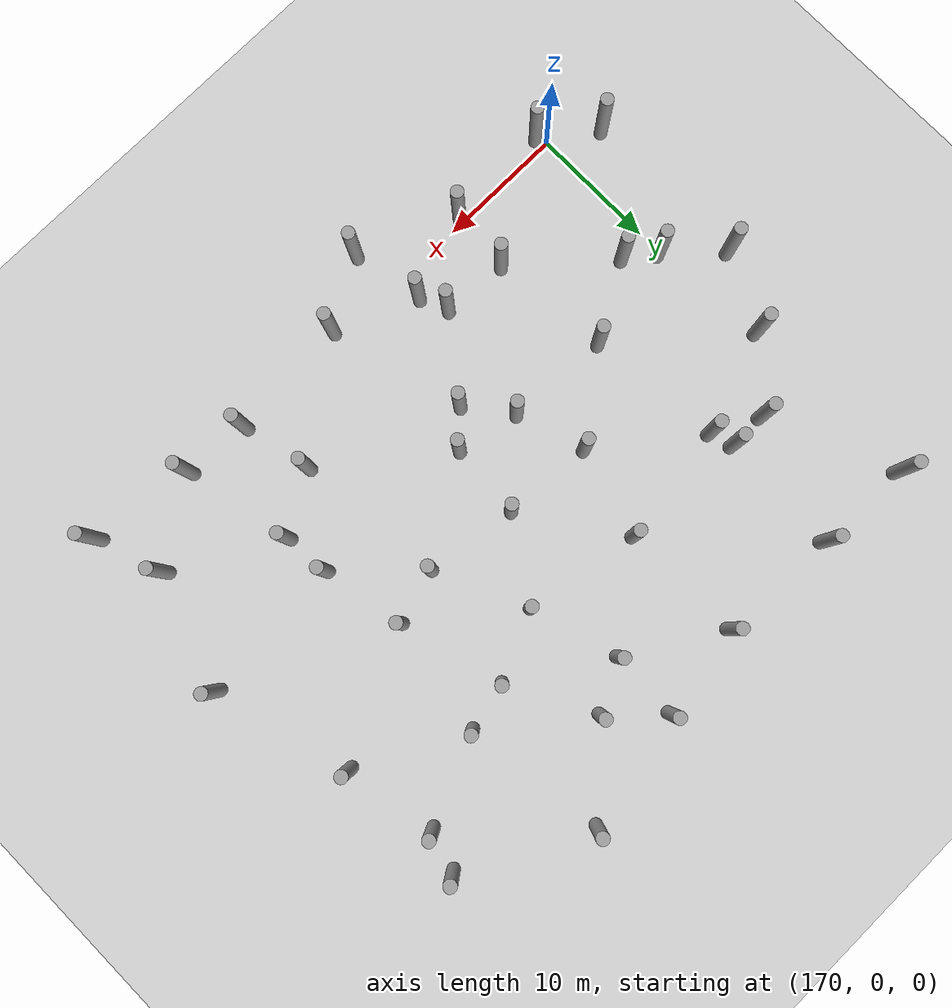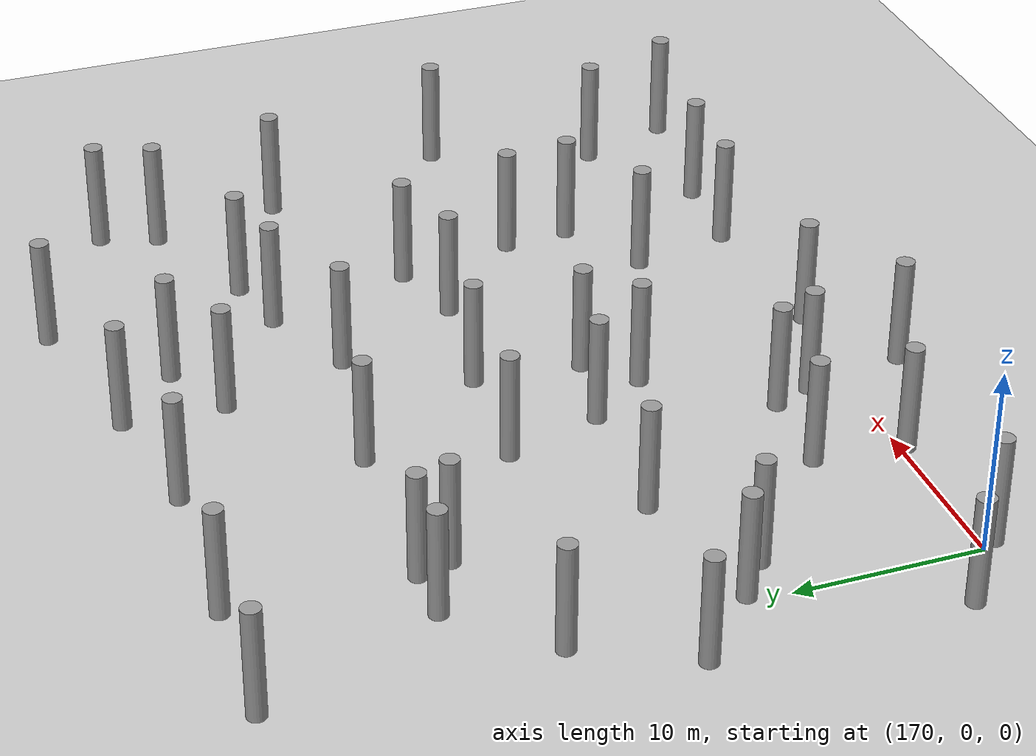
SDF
<sdf version="1.5">
 <world name="circle">
  <model name="ground">
   <static>1</static>
   <link name="link">
    <collision name="collision">
     <geometry><plane><normal>0 0 1</normal><size>100 100</size></plane></geometry>
     <surface><friction><ode><mu>100</mu><mu2>50</mu2></ode></friction></surface>
    </collision>
    <visual name="visual">
     <cast_shadows>0</cast_shadows>
     <geometry><plane><normal>0 0 1</normal><size>100 100</size></plane></geometry>
     <material>
      <script><uri>file://media/materials/scripts/gazebo.material</uri><name>Gazebo/Grey</name></script>
     </material>
    </visual>
    <velocity_decay><linear>0</linear><angular>0</angular></velocity_decay>
   </link>
  </model>
  <model name="unit_cylinder_270">
   <pose>166.5129695 2.3240239351 3 3e-06 4e-06 -0</pose>
   <static>1</static>
   <self_collide>1</self_collide>
   <link name="link">
    <inertial>
     <mass>1</mass>
     <inertia><ixx>0.145833</ixx><ixy>0</ixy><ixz>0</ixz><iyy>0.145833</iyy><iyz>0</iyz><izz>0.125</izz></inertia>
    </inertial>
    <collision name="collision">
     <geometry><cylinder><radius>0.5</radius><length>6</length></cylinder></geometry>
    </collision>
    <visual name="visual">
     <geometry><cylinder><radius>0.5</radius><length>6</length></cylinder></geometry>
     <material>
      <script><name>Gazebo/Grey</name><uri>file://media/materials/scripts/gazebo.material</uri></script>
     </material>
    </visual>
    <collision name="cyl_collision">
     <geometry><cylinder><radius>0.5</radius><length>6</length></cylinder></geometry>
    </collision>
    <sensor name="my_contact" type="contact">
     <contact><collision>cyl_collision</collision></contact>
     <update_rate>5</update_rate>
    </sensor>
   </link>
  </model>
  <model name="unit_cylinder_272">
   <pose>166.591891095 15.6642745235 3 3e-06 4e-06 -0</pose>
   <static>1</static>
   <self_collide>1</self_collide>
   <link name="link">
    <inertial>
     <mass>1</mass>
     <inertia><ixx>0.145833</ixx><ixy>0</ixy><ixz>0</ixz><iyy>0.145833</iyy><iyz>0</iyz><izz>0.125</izz></inertia>
    </inertial>
    <collision name="collision">
     <geometry><cylinder><radius>0.5</radius><length>6</length></cylinder></geometry>
    </collision>
    <visual name="visual">
     <geometry><cylinder><radius>0.5</radius><length>6</length></cylinder></geometry>
     <material>
      <script><name>Gazebo/Grey</name><uri>file://media/materials/scripts/gazebo.material</uri></script>
     </material>
    </visual>
    <collision name="cyl_collision">
     <geometry><cylinder><radius>0.5</radius><length>6</length></cylinder></geometry>
    </collision>
    <sensor name="my_contact" type="contact">
     <contact><collision>cyl_collision</collision></contact>
     <update_rate>5</update_rate>
    </sensor>
   </link>
  </model>
  <model name="unit_cylinder_282">
   <pose>170.498451374 -0.73250684499 3 3e-06 4e-06 -0</pose>
   <static>1</static>
   <self_collide>1</self_collide>
   <link name="link">
    <inertial>
     <mass>1</mass>
     <inertia><ixx>0.145833</ixx><ixy>0</ixy><ixz>0</ixz><iyy>0.145833</iyy><iyz>0</iyz><izz>0.125</izz></inertia>
    </inertial>
    <collision name="collision">
     <geometry><cylinder><radius>0.5</radius><length>6</length></cylinder></geometry>
    </collision>
    <visual name="visual">
     <geometry><cylinder><radius>0.5</radius><length>6</length></cylinder></geometry>
     <material>
      <script><name>Gazebo/Grey</name><uri>file://media/materials/scripts/gazebo.material</uri></script>
     </material>
    </visual>
    <collision name="cyl_collision">
     <geometry><cylinder><radius>0.5</radius><length>6</length></cylinder></geometry>
    </collision>
    <sensor name="my_contact" type="contact">
     <contact><collision>cyl_collision</collision></contact>
     <update_rate>5</update_rate>
    </sensor>
   </link>
  </model>
  <model name="unit_cylinder_283">
   <pose>172.629861783 10.4889333771 3 3e-06 4e-06 -0</pose>
   <static>1</static>
   <self_collide>1</self_collide>
   <link name="link">
    <inertial>
     <mass>1</mass>
     <inertia><ixx>0.145833</ixx><ixy>0</ixy><ixz>0</ixz><iyy>0.145833</iyy><iyz>0</iyz><izz>0.125</izz></inertia>
    </inertial>
    <collision name="collision">
     <geometry><cylinder><radius>0.5</radius><length>6</length></cylinder></geometry>
    </collision>
    <visual name="visual">
     <geometry><cylinder><radius>0.5</radius><length>6</length></cylinder></geometry>
     <material>
      <script><name>Gazebo/Grey</name><uri>file://media/materials/scripts/gazebo.material</uri></script>
     </material>
    </visual>
    <collision name="cyl_collision">
     <geometry><cylinder><radius>0.5</radius><length>6</length></cylinder></geometry>
    </collision>
    <sensor name="my_contact" type="contact">
     <contact><collision>cyl_collision</collision></contact>
     <update_rate>5</update_rate>
    </sensor>
   </link>
  </model>
  <model name="unit_cylinder_284">
   <pose>170.406014508 12.1480397608 3 3e-06 4e-06 -0</pose>
   <static>1</static>
   <self_collide>1</self_collide>
   <link name="link">
    <inertial>
     <mass>1</mass>
     <inertia><ixx>0.145833</ixx><ixy>0</ixy><ixz>0</ixz><iyy>0.145833</iyy><iyz>0</iyz><izz>0.125</izz></inertia>
    </inertial>
    <collision name="collision">
     <geometry><cylinder><radius>0.5</radius><length>6</length></cylinder></geometry>
    </collision>
    <visual name="visual">
     <geometry><cylinder><radius>0.5</radius><length>6</length></cylinder></geometry>
     <material>
      <script><name>Gazebo/Grey</name><uri>file://media/materials/scripts/gazebo.material</uri></script>
     </material>
    </visual>
    <collision name="cyl_collision">
     <geometry><cylinder><radius>0.5</radius><length>6</length></cylinder></geometry>
    </collision>
    <sensor name="my_contact" type="contact">
     <contact><collision>cyl_collision</collision></contact>
     <update_rate>5</update_rate>
    </sensor>
   </link>
  </model>
  <model name="unit_cylinder_285">
   <pose>169.570666954 21.4284582694 3 3e-06 4e-06 -0</pose>
   <static>1</static>
   <self_collide>1</self_collide>
   <link name="link">
    <inertial>
     <mass>1</mass>
     <inertia><ixx>0.145833</ixx><ixy>0</ixy><ixz>0</ixz><iyy>0.145833</iyy><iyz>0</iyz><izz>0.125</izz></inertia>
    </inertial>
    <collision name="collision">
     <geometry><cylinder><radius>0.5</radius><length>6</length></cylinder></geometry>
    </collision>
    <visual name="visual">
     <geometry><cylinder><radius>0.5</radius><length>6</length></cylinder></geometry>
     <material>
      <script><name>Gazebo/Grey</name><uri>file://media/materials/scripts/gazebo.material</uri></script>
     </material>
    </visual>
    <collision name="cyl_collision">
     <geometry><cylinder><radius>0.5</radius><length>6</length></cylinder></geometry>
    </collision>
    <sensor name="my_contact" type="contact">
     <contact><collision>cyl_collision</collision></contact>
     <update_rate>5</update_rate>
    </sensor>
   </link>
  </model>
  <model name="unit_cylinder_286">
   <pose>173.950558017 26.0451045765 3 3e-06 4e-06 -0</pose>
   <static>1</static>
   <self_collide>1</self_collide>
   <link name="link">
    <inertial>
     <mass>1</mass>
     <inertia><ixx>0.145833</ixx><ixy>0</ixy><ixz>0</ixz><iyy>0.145833</iyy><iyz>0</iyz><izz>0.125</izz></inertia>
    </inertial>
    <collision name="collision">
     <geometry><cylinder><radius>0.5</radius><length>6</length></cylinder></geometry>
    </collision>
    <visual name="visual">
     <geometry><cylinder><radius>0.5</radius><length>6</length></cylinder></geometry>
     <material>
      <script><name>Gazebo/Grey</name><uri>file://media/materials/scripts/gazebo.material</uri></script>
     </material>
    </visual>
    <collision name="cyl_collision">
     <geometry><cylinder><radius>0.5</radius><length>6</length></cylinder></geometry>
    </collision>
    <sensor name="my_contact" type="contact">
     <contact><collision>cyl_collision</collision></contact>
     <update_rate>5</update_rate>
    </sensor>
   </link>
  </model>
  <model name="unit_cylinder_287">
   <pose>169.797387657 35.834652189 3 3e-06 4e-06 -0</pose>
   <static>1</static>
   <self_collide>1</self_collide>
   <link name="link">
    <inertial>
     <mass>1</mass>
     <inertia><ixx>0.145833</ixx><ixy>0</ixy><ixz>0</ixz><iyy>0.145833</iyy><iyz>0</iyz><izz>0.125</izz></inertia>
    </inertial>
    <collision name="collision">
     <geometry><cylinder><radius>0.5</radius><length>6</length></cylinder></geometry>
    </collision>
    <visual name="visual">
     <geometry><cylinder><radius>0.5</radius><length>6</length></cylinder></geometry>
     <material>
      <script><name>Gazebo/Grey</name><uri>file://media/materials/scripts/gazebo.material</uri></script>
     </material>
    </visual>
    <collision name="cyl_collision">
     <geometry><cylinder><radius>0.5</radius><length>6</length></cylinder></geometry>
    </collision>
    <sensor name="my_contact" type="contact">
     <contact><collision>cyl_collision</collision></contact>
     <update_rate>5</update_rate>
    </sensor>
   </link>
  </model>
  <model name="unit_cylinder_294">
   <pose>178.955057749 -0.327991984011 3 3e-06 4e-06 -0</pose>
   <static>1</static>
   <self_collide>1</self_collide>
   <link name="link">
    <inertial>
     <mass>1</mass>
     <inertia><ixx>0.145833</ixx><ixy>0</ixy><ixz>0</ixz><iyy>0.145833</iyy><iyz>0</iyz><izz>0.125</izz></inertia>
    </inertial>
    <collision name="collision">
     <geometry><cylinder><radius>0.5</radius><length>6</length></cylinder></geometry>
    </collision>
    <visual name="visual">
     <geometry><cylinder><radius>0.5</radius><length>6</length></cylinder></geometry>
     <material>
      <script><name>Gazebo/Grey</name><uri>file://media/materials/scripts/gazebo.material</uri></script>
     </material>
    </visual>
    <collision name="cyl_collision">
     <geometry><cylinder><radius>0.5</radius><length>6</length></cylinder></geometry>
    </collision>
    <sensor name="my_contact" type="contact">
     <contact><collision>cyl_collision</collision></contact>
     <update_rate>5</update_rate>
    </sensor>
   </link>
  </model>
  <model name="unit_cylinder_295">
   <pose>179.417786814 4.57844936641 3 3e-06 4e-06 -0</pose>
   <static>1</static>
   <self_collide>1</self_collide>
   <link name="link">
    <inertial>
     <mass>1</mass>
     <inertia><ixx>0.145833</ixx><ixy>0</ixy><ixz>0</ixz><iyy>0.145833</iyy><iyz>0</iyz><izz>0.125</izz></inertia>
    </inertial>
    <collision name="collision">
     <geometry><cylinder><radius>0.5</radius><length>6</length></cylinder></geometry>
    </collision>
    <visual name="visual">
     <geometry><cylinder><radius>0.5</radius><length>6</length></cylinder></geometry>
     <material>
      <script><name>Gazebo/Grey</name><uri>file://media/materials/scripts/gazebo.material</uri></script>
     </material>
    </visual>
    <collision name="cyl_collision">
     <geometry><cylinder><radius>0.5</radius><length>6</length></cylinder></geometry>
    </collision>
    <sensor name="my_contact" type="contact">
     <contact><collision>cyl_collision</collision></contact>
     <update_rate>5</update_rate>
    </sensor>
   </link>
  </model>
  <model name="unit_cylinder_296">
   <pose>178.491528173 13.819888039 3 3e-06 4e-06 -0</pose>
   <static>1</static>
   <self_collide>1</self_collide>
   <link name="link">
    <inertial>
     <mass>1</mass>
     <inertia><ixx>0.145833</ixx><ixy>0</ixy><ixz>0</ixz><iyy>0.145833</iyy><iyz>0</iyz><izz>0.125</izz></inertia>
    </inertial>
    <collision name="collision">
     <geometry><cylinder><radius>0.5</radius><length>6</length></cylinder></geometry>
    </collision>
    <visual name="visual">
     <geometry><cylinder><radius>0.5</radius><length>6</length></cylinder></geometry>
     <material>
      <script><name>Gazebo/Grey</name><uri>file://media/materials/scripts/gazebo.material</uri></script>
     </material>
    </visual>
    <collision name="cyl_collision">
     <geometry><cylinder><radius>0.5</radius><length>6</length></cylinder></geometry>
    </collision>
    <sensor name="my_contact" type="contact">
     <contact><collision>cyl_collision</collision></contact>
     <update_rate>5</update_rate>
    </sensor>
   </link>
  </model>
  <model name="unit_cylinder_297">
   <pose>177.480120072 24.2613503236 3 3e-06 4e-06 -0</pose>
   <static>1</static>
   <self_collide>1</self_collide>
   <link name="link">
    <inertial>
     <mass>1</mass>
     <inertia><ixx>0.145833</ixx><ixy>0</ixy><ixz>0</ixz><iyy>0.145833</iyy><iyz>0</iyz><izz>0.125</izz></inertia>
    </inertial>
    <collision name="collision">
     <geometry><cylinder><radius>0.5</radius><length>6</length></cylinder></geometry>
    </collision>
    <visual name="visual">
     <geometry><cylinder><radius>0.5</radius><length>6</length></cylinder></geometry>
     <material>
      <script><name>Gazebo/Grey</name><uri>file://media/materials/scripts/gazebo.material</uri></script>
     </material>
    </visual>
    <collision name="cyl_collision">
     <geometry><cylinder><radius>0.5</radius><length>6</length></cylinder></geometry>
    </collision>
    <sensor name="my_contact" type="contact">
     <contact><collision>cyl_collision</collision></contact>
     <update_rate>5</update_rate>
    </sensor>
   </link>
  </model>
  <model name="unit_cylinder_298">
   <pose>176.967946995 26.0555678501 3 3e-06 4e-06 -0</pose>
   <static>1</static>
   <self_collide>1</self_collide>
   <link name="link">
    <inertial>
     <mass>1</mass>
     <inertia><ixx>0.145833</ixx><ixy>0</ixy><ixz>0</ixz><iyy>0.145833</iyy><iyz>0</iyz><izz>0.125</izz></inertia>
    </inertial>
    <collision name="collision">
     <geometry><cylinder><radius>0.5</radius><length>6</length></cylinder></geometry>
    </collision>
    <visual name="visual">
     <geometry><cylinder><radius>0.5</radius><length>6</length></cylinder></geometry>
     <material>
      <script><name>Gazebo/Grey</name><uri>file://media/materials/scripts/gazebo.material</uri></script>
     </material>
    </visual>
    <collision name="cyl_collision">
     <geometry><cylinder><radius>0.5</radius><length>6</length></cylinder></geometry>
    </collision>
    <sensor name="my_contact" type="contact">
     <contact><collision>cyl_collision</collision></contact>
     <update_rate>5</update_rate>
    </sensor>
   </link>
  </model>
  <model name="unit_cylinder_299">
   <pose>177.342497543 35.5341634739 3 3e-06 4e-06 -0</pose>
   <static>1</static>
   <self_collide>1</self_collide>
   <link name="link">
    <inertial>
     <mass>1</mass>
     <inertia><ixx>0.145833</ixx><ixy>0</ixy><ixz>0</ixz><iyy>0.145833</iyy><iyz>0</iyz><izz>0.125</izz></inertia>
    </inertial>
    <collision name="collision">
     <geometry><cylinder><radius>0.5</radius><length>6</length></cylinder></geometry>
    </collision>
    <visual name="visual">
     <geometry><cylinder><radius>0.5</radius><length>6</length></cylinder></geometry>
     <material>
      <script><name>Gazebo/Grey</name><uri>file://media/materials/scripts/gazebo.material</uri></script>
     </material>
    </visual>
    <collision name="cyl_collision">
     <geometry><cylinder><radius>0.5</radius><length>6</length></cylinder></geometry>
    </collision>
    <sensor name="my_contact" type="contact">
     <contact><collision>cyl_collision</collision></contact>
     <update_rate>5</update_rate>
    </sensor>
   </link>
  </model>
  <model name="unit_cylinder_305">
   <pose>186.505606615 -3.56137119894 3 3e-06 4e-06 -0</pose>
   <static>1</static>
   <self_collide>1</self_collide>
   <link name="link">
    <inertial>
     <mass>1</mass>
     <inertia><ixx>0.145833</ixx><ixy>0</ixy><ixz>0</ixz><iyy>0.145833</iyy><iyz>0</iyz><izz>0.125</izz></inertia>
    </inertial>
    <collision name="collision">
     <geometry><cylinder><radius>0.5</radius><length>6</length></cylinder></geometry>
    </collision>
    <visual name="visual">
     <geometry><cylinder><radius>0.5</radius><length>6</length></cylinder></geometry>
     <material>
      <script><name>Gazebo/Grey</name><uri>file://media/materials/scripts/gazebo.material</uri></script>
     </material>
    </visual>
    <collision name="cyl_collision">
     <geometry><cylinder><radius>0.5</radius><length>6</length></cylinder></geometry>
    </collision>
    <sensor name="my_contact" type="contact">
     <contact><collision>cyl_collision</collision></contact>
     <update_rate>5</update_rate>
    </sensor>
   </link>
  </model>
  <model name="unit_cylinder_306">
   <pose>185.450160214 2.06093408543 3 3e-06 4e-06 -0</pose>
   <static>1</static>
   <self_collide>1</self_collide>
   <link name="link">
    <inertial>
     <mass>1</mass>
     <inertia><ixx>0.145833</ixx><ixy>0</ixy><ixz>0</ixz><iyy>0.145833</iyy><iyz>0</iyz><izz>0.125</izz></inertia>
    </inertial>
    <collision name="collision">
     <geometry><cylinder><radius>0.5</radius><length>6</length></cylinder></geometry>
    </collision>
    <visual name="visual">
     <geometry><cylinder><radius>0.5</radius><length>6</length></cylinder></geometry>
     <material>
      <script><name>Gazebo/Grey</name><uri>file://media/materials/scripts/gazebo.material</uri></script>
     </material>
    </visual>
    <collision name="cyl_collision">
     <geometry><cylinder><radius>0.5</radius><length>6</length></cylinder></geometry>
    </collision>
    <sensor name="my_contact" type="contact">
     <contact><collision>cyl_collision</collision></contact>
     <update_rate>5</update_rate>
    </sensor>
   </link>
  </model>
  <model name="unit_cylinder_307">
   <pose>184.552523917 4.22950400358 3 3e-06 4e-06 -0</pose>
   <static>1</static>
   <self_collide>1</self_collide>
   <link name="link">
    <inertial>
     <mass>1</mass>
     <inertia><ixx>0.145833</ixx><ixy>0</ixy><ixz>0</ixz><iyy>0.145833</iyy><iyz>0</iyz><izz>0.125</izz></inertia>
    </inertial>
    <collision name="collision">
     <geometry><cylinder><radius>0.5</radius><length>6</length></cylinder></geometry>
    </collision>
    <visual name="visual">
     <geometry><cylinder><radius>0.5</radius><length>6</length></cylinder></geometry>
     <material>
      <script><name>Gazebo/Grey</name><uri>file://media/materials/scripts/gazebo.material</uri></script>
     </material>
    </visual>
    <collision name="cyl_collision">
     <geometry><cylinder><radius>0.5</radius><length>6</length></cylinder></geometry>
    </collision>
    <sensor name="my_contact" type="contact">
     <contact><collision>cyl_collision</collision></contact>
     <update_rate>5</update_rate>
    </sensor>
   </link>
  </model>
  <model name="unit_cylinder_308">
   <pose>186.520635025 13.359547486 3 3e-06 4e-06 -0</pose>
   <static>1</static>
   <self_collide>1</self_collide>
   <link name="link">
    <inertial>
     <mass>1</mass>
     <inertia><ixx>0.145833</ixx><ixy>0</ixy><ixz>0</ixz><iyy>0.145833</iyy><iyz>0</iyz><izz>0.125</izz></inertia>
    </inertial>
    <collision name="collision">
     <geometry><cylinder><radius>0.5</radius><length>6</length></cylinder></geometry>
    </collision>
    <visual name="visual">
     <geometry><cylinder><radius>0.5</radius><length>6</length></cylinder></geometry>
     <material>
      <script><name>Gazebo/Grey</name><uri>file://media/materials/scripts/gazebo.material</uri></script>
     </material>
    </visual>
    <collision name="cyl_collision">
     <geometry><cylinder><radius>0.5</radius><length>6</length></cylinder></geometry>
    </collision>
    <sensor name="my_contact" type="contact">
     <contact><collision>cyl_collision</collision></contact>
     <update_rate>5</update_rate>
    </sensor>
   </link>
  </model>
  <model name="unit_cylinder_309">
   <pose>184.871944343 18.6706199008 3 3e-06 4e-06 -0</pose>
   <static>1</static>
   <self_collide>1</self_collide>
   <link name="link">
    <inertial>
     <mass>1</mass>
     <inertia><ixx>0.145833</ixx><ixy>0</ixy><ixz>0</ixz><iyy>0.145833</iyy><iyz>0</iyz><izz>0.125</izz></inertia>
    </inertial>
    <collision name="collision">
     <geometry><cylinder><radius>0.5</radius><length>6</length></cylinder></geometry>
    </collision>
    <visual name="visual">
     <geometry><cylinder><radius>0.5</radius><length>6</length></cylinder></geometry>
     <material>
      <script><name>Gazebo/Grey</name><uri>file://media/materials/scripts/gazebo.material</uri></script>
     </material>
    </visual>
    <collision name="cyl_collision">
     <geometry><cylinder><radius>0.5</radius><length>6</length></cylinder></geometry>
    </collision>
    <sensor name="my_contact" type="contact">
     <contact><collision>cyl_collision</collision></contact>
     <update_rate>5</update_rate>
    </sensor>
   </link>
  </model>
  <model name="unit_cylinder_310">
   <pose>186.843621125 25.6140434027 3 3e-06 4e-06 -0</pose>
   <static>1</static>
   <self_collide>1</self_collide>
   <link name="link">
    <inertial>
     <mass>1</mass>
     <inertia><ixx>0.145833</ixx><ixy>0</ixy><ixz>0</ixz><iyy>0.145833</iyy><iyz>0</iyz><izz>0.125</izz></inertia>
    </inertial>
    <collision name="collision">
     <geometry><cylinder><radius>0.5</radius><length>6</length></cylinder></geometry>
    </collision>
    <visual name="visual">
     <geometry><cylinder><radius>0.5</radius><length>6</length></cylinder></geometry>
     <material>
      <script><name>Gazebo/Grey</name><uri>file://media/materials/scripts/gazebo.material</uri></script>
     </material>
    </visual>
    <collision name="cyl_collision">
     <geometry><cylinder><radius>0.5</radius><length>6</length></cylinder></geometry>
    </collision>
    <sensor name="my_contact" type="contact">
     <contact><collision>cyl_collision</collision></contact>
     <update_rate>5</update_rate>
    </sensor>
   </link>
  </model>
  <model name="unit_cylinder_311">
   <pose>186.696938864 35.1172893948 3 3e-06 4e-06 -0</pose>
   <static>1</static>
   <self_collide>1</self_collide>
   <link name="link">
    <inertial>
     <mass>1</mass>
     <inertia><ixx>0.145833</ixx><ixy>0</ixy><ixz>0</ixz><iyy>0.145833</iyy><iyz>0</iyz><izz>0.125</izz></inertia>
    </inertial>
    <collision name="collision">
     <geometry><cylinder><radius>0.5</radius><length>6</length></cylinder></geometry>
    </collision>
    <visual name="visual">
     <geometry><cylinder><radius>0.5</radius><length>6</length></cylinder></geometry>
     <material>
      <script><name>Gazebo/Grey</name><uri>file://media/materials/scripts/gazebo.material</uri></script>
     </material>
    </visual>
    <collision name="cyl_collision">
     <geometry><cylinder><radius>0.5</radius><length>6</length></cylinder></geometry>
    </collision>
    <sensor name="my_contact" type="contact">
     <contact><collision>cyl_collision</collision></contact>
     <update_rate>5</update_rate>
    </sensor>
   </link>
  </model>
  <model name="unit_cylinder_318">
   <pose>191.751191049 -0.555066043017 3 3e-06 4e-06 -0</pose>
   <static>1</static>
   <self_collide>1</self_collide>
   <link name="link">
    <inertial>
     <mass>1</mass>
     <inertia><ixx>0.145833</ixx><ixy>0</ixy><ixz>0</ixz><iyy>0.145833</iyy><iyz>0</iyz><izz>0.125</izz></inertia>
    </inertial>
    <collision name="collision">
     <geometry><cylinder><radius>0.5</radius><length>6</length></cylinder></geometry>
    </collision>
    <visual name="visual">
     <geometry><cylinder><radius>0.5</radius><length>6</length></cylinder></geometry>
     <material>
      <script><name>Gazebo/Grey</name><uri>file://media/materials/scripts/gazebo.material</uri></script>
     </material>
    </visual>
    <collision name="cyl_collision">
     <geometry><cylinder><radius>0.5</radius><length>6</length></cylinder></geometry>
    </collision>
    <sensor name="my_contact" type="contact">
     <contact><collision>cyl_collision</collision></contact>
     <update_rate>5</update_rate>
    </sensor>
   </link>
  </model>
  <model name="unit_cylinder_319">
   <pose>189.032103082 10.0477806597 3 3e-06 4e-06 -0</pose>
   <static>1</static>
   <self_collide>1</self_collide>
   <link name="link">
    <inertial>
     <mass>1</mass>
     <inertia><ixx>0.145833</ixx><ixy>0</ixy><ixz>0</ixz><iyy>0.145833</iyy><iyz>0</iyz><izz>0.125</izz></inertia>
    </inertial>
    <collision name="collision">
     <geometry><cylinder><radius>0.5</radius><length>6</length></cylinder></geometry>
    </collision>
    <visual name="visual">
     <geometry><cylinder><radius>0.5</radius><length>6</length></cylinder></geometry>
     <material>
      <script><name>Gazebo/Grey</name><uri>file://media/materials/scripts/gazebo.material</uri></script>
     </material>
    </visual>
    <collision name="cyl_collision">
     <geometry><cylinder><radius>0.5</radius><length>6</length></cylinder></geometry>
    </collision>
    <sensor name="my_contact" type="contact">
     <contact><collision>cyl_collision</collision></contact>
     <update_rate>5</update_rate>
    </sensor>
   </link>
  </model>
  <model name="unit_cylinder_320">
   <pose>191.36171923 12.3679089269 3 3e-06 4e-06 -0</pose>
   <static>1</static>
   <self_collide>1</self_collide>
   <link name="link">
    <inertial>
     <mass>1</mass>
     <inertia><ixx>0.145833</ixx><ixy>0</ixy><ixz>0</ixz><iyy>0.145833</iyy><iyz>0</iyz><izz>0.125</izz></inertia>
    </inertial>
    <collision name="collision">
     <geometry><cylinder><radius>0.5</radius><length>6</length></cylinder></geometry>
    </collision>
    <visual name="visual">
     <geometry><cylinder><radius>0.5</radius><length>6</length></cylinder></geometry>
     <material>
      <script><name>Gazebo/Grey</name><uri>file://media/materials/scripts/gazebo.material</uri></script>
     </material>
    </visual>
    <collision name="cyl_collision">
     <geometry><cylinder><radius>0.5</radius><length>6</length></cylinder></geometry>
    </collision>
    <sensor name="my_contact" type="contact">
     <contact><collision>cyl_collision</collision></contact>
     <update_rate>5</update_rate>
    </sensor>
   </link>
  </model>
  <model name="unit_cylinder_321">
   <pose>191.824874959 18.1656290097 3 3e-06 4e-06 -0</pose>
   <static>1</static>
   <self_collide>1</self_collide>
   <link name="link">
    <inertial>
     <mass>1</mass>
     <inertia><ixx>0.145833</ixx><ixy>0</ixy><ixz>0</ixz><iyy>0.145833</iyy><iyz>0</iyz><izz>0.125</izz></inertia>
    </inertial>
    <collision name="collision">
     <geometry><cylinder><radius>0.5</radius><length>6</length></cylinder></geometry>
    </collision>
    <visual name="visual">
     <geometry><cylinder><radius>0.5</radius><length>6</length></cylinder></geometry>
     <material>
      <script><name>Gazebo/Grey</name><uri>file://media/materials/scripts/gazebo.material</uri></script>
     </material>
    </visual>
    <collision name="cyl_collision">
     <geometry><cylinder><radius>0.5</radius><length>6</length></cylinder></geometry>
    </collision>
    <sensor name="my_contact" type="contact">
     <contact><collision>cyl_collision</collision></contact>
     <update_rate>5</update_rate>
    </sensor>
   </link>
  </model>
  <model name="unit_cylinder_322">
   <pose>193.769251381 30.8816118692 3 3e-06 4e-06 -0</pose>
   <static>1</static>
   <self_collide>1</self_collide>
   <link name="link">
    <inertial>
     <mass>1</mass>
     <inertia><ixx>0.145833</ixx><ixy>0</ixy><ixz>0</ixz><iyy>0.145833</iyy><iyz>0</iyz><izz>0.125</izz></inertia>
    </inertial>
    <collision name="collision">
     <geometry><cylinder><radius>0.5</radius><length>6</length></cylinder></geometry>
    </collision>
    <visual name="visual">
     <geometry><cylinder><radius>0.5</radius><length>6</length></cylinder></geometry>
     <material>
      <script><name>Gazebo/Grey</name><uri>file://media/materials/scripts/gazebo.material</uri></script>
     </material>
    </visual>
    <collision name="cyl_collision">
     <geometry><cylinder><radius>0.5</radius><length>6</length></cylinder></geometry>
    </collision>
    <sensor name="my_contact" type="contact">
     <contact><collision>cyl_collision</collision></contact>
     <update_rate>5</update_rate>
    </sensor>
   </link>
  </model>
  <model name="unit_cylinder_323">
   <pose>193.962056138 36.2754016622 3 3e-06 4e-06 -0</pose>
   <static>1</static>
   <self_collide>1</self_collide>
   <link name="link">
    <inertial>
     <mass>1</mass>
     <inertia><ixx>0.145833</ixx><ixy>0</ixy><ixz>0</ixz><iyy>0.145833</iyy><iyz>0</iyz><izz>0.125</izz></inertia>
    </inertial>
    <collision name="collision">
     <geometry><cylinder><radius>0.5</radius><length>6</length></cylinder></geometry>
    </collision>
    <visual name="visual">
     <geometry><cylinder><radius>0.5</radius><length>6</length></cylinder></geometry>
     <material>
      <script><name>Gazebo/Grey</name><uri>file://media/materials/scripts/gazebo.material</uri></script>
     </material>
    </visual>
    <collision name="cyl_collision">
     <geometry><cylinder><radius>0.5</radius><length>6</length></cylinder></geometry>
    </collision>
    <sensor name="my_contact" type="contact">
     <contact><collision>cyl_collision</collision></contact>
     <update_rate>5</update_rate>
    </sensor>
   </link>
  </model>
  <model name="unit_cylinder_330">
   <pose>201.260941028 0.134146018456 3 3e-06 4e-06 -0</pose>
   <static>1</static>
   <self_collide>1</self_collide>
   <link name="link">
    <inertial>
     <mass>1</mass>
     <inertia><ixx>0.145833</ixx><ixy>0</ixy><ixz>0</ixz><iyy>0.145833</iyy><iyz>0</iyz><izz>0.125</izz></inertia>
    </inertial>
    <collision name="collision">
     <geometry><cylinder><radius>0.5</radius><length>6</length></cylinder></geometry>
    </collision>
    <visual name="visual">
     <geometry><cylinder><radius>0.5</radius><length>6</length></cylinder></geometry>
     <material>
      <script><name>Gazebo/Grey</name><uri>file://media/materials/scripts/gazebo.material</uri></script>
     </material>
    </visual>
    <collision name="cyl_collision">
     <geometry><cylinder><radius>0.5</radius><length>6</length></cylinder></geometry>
    </collision>
    <sensor name="my_contact" type="contact">
     <contact><collision>cyl_collision</collision></contact>
     <update_rate>5</update_rate>
    </sensor>
   </link>
  </model>
  <model name="unit_cylinder_331">
   <pose>200.046354974 5.59182080962 3 3e-06 4e-06 -0</pose>
   <static>1</static>
   <self_collide>1</self_collide>
   <link name="link">
    <inertial>
     <mass>1</mass>
     <inertia><ixx>0.145833</ixx><ixy>0</ixy><ixz>0</ixz><iyy>0.145833</iyy><iyz>0</iyz><izz>0.125</izz></inertia>
    </inertial>
    <collision name="collision">
     <geometry><cylinder><radius>0.5</radius><length>6</length></cylinder></geometry>
    </collision>
    <visual name="visual">
     <geometry><cylinder><radius>0.5</radius><length>6</length></cylinder></geometry>
     <material>
      <script><name>Gazebo/Grey</name><uri>file://media/materials/scripts/gazebo.material</uri></script>
     </material>
    </visual>
    <collision name="cyl_collision">
     <geometry><cylinder><radius>0.5</radius><length>6</length></cylinder></geometry>
    </collision>
    <sensor name="my_contact" type="contact">
     <contact><collision>cyl_collision</collision></contact>
     <update_rate>5</update_rate>
    </sensor>
   </link>
  </model>
  <model name="unit_cylinder_332">
   <pose>198.879588201 17.1342348612 3 3e-06 4e-06 -0</pose>
   <static>1</static>
   <self_collide>1</self_collide>
   <link name="link">
    <inertial>
     <mass>1</mass>
     <inertia><ixx>0.145833</ixx><ixy>0</ixy><ixz>0</ixz><iyy>0.145833</iyy><iyz>0</iyz><izz>0.125</izz></inertia>
    </inertial>
    <collision name="collision">
     <geometry><cylinder><radius>0.5</radius><length>6</length></cylinder></geometry>
    </collision>
    <visual name="visual">
     <geometry><cylinder><radius>0.5</radius><length>6</length></cylinder></geometry>
     <material>
      <script><name>Gazebo/Grey</name><uri>file://media/materials/scripts/gazebo.material</uri></script>
     </material>
    </visual>
    <collision name="cyl_collision">
     <geometry><cylinder><radius>0.5</radius><length>6</length></cylinder></geometry>
    </collision>
    <sensor name="my_contact" type="contact">
     <contact><collision>cyl_collision</collision></contact>
     <update_rate>5</update_rate>
    </sensor>
   </link>
  </model>
  <model name="unit_cylinder_333">
   <pose>195.760292349 24.0738801981 3 3e-06 4e-06 -0</pose>
   <static>1</static>
   <self_collide>1</self_collide>
   <link name="link">
    <inertial>
     <mass>1</mass>
     <inertia><ixx>0.145833</ixx><ixy>0</ixy><ixz>0</ixz><iyy>0.145833</iyy><iyz>0</iyz><izz>0.125</izz></inertia>
    </inertial>
    <collision name="collision">
     <geometry><cylinder><radius>0.5</radius><length>6</length></cylinder></geometry>
    </collision>
    <visual name="visual">
     <geometry><cylinder><radius>0.5</radius><length>6</length></cylinder></geometry>
     <material>
      <script><name>Gazebo/Grey</name><uri>file://media/materials/scripts/gazebo.material</uri></script>
     </material>
    </visual>
    <collision name="cyl_collision">
     <geometry><cylinder><radius>0.5</radius><length>6</length></cylinder></geometry>
    </collision>
    <sensor name="my_contact" type="contact">
     <contact><collision>cyl_collision</collision></contact>
     <update_rate>5</update_rate>
    </sensor>
   </link>
  </model>
  <model name="unit_cylinder_334">
   <pose>200.923607443 26.3942169678 3 3e-06 4e-06 -0</pose>
   <static>1</static>
   <self_collide>1</self_collide>
   <link name="link">
    <inertial>
     <mass>1</mass>
     <inertia><ixx>0.145833</ixx><ixy>0</ixy><ixz>0</ixz><iyy>0.145833</iyy><iyz>0</iyz><izz>0.125</izz></inertia>
    </inertial>
    <collision name="collision">
     <geometry><cylinder><radius>0.5</radius><length>6</length></cylinder></geometry>
    </collision>
    <visual name="visual">
     <geometry><cylinder><radius>0.5</radius><length>6</length></cylinder></geometry>
     <material>
      <script><name>Gazebo/Grey</name><uri>file://media/materials/scripts/gazebo.material</uri></script>
     </material>
    </visual>
    <collision name="cyl_collision">
     <geometry><cylinder><radius>0.5</radius><length>6</length></cylinder></geometry>
    </collision>
    <sensor name="my_contact" type="contact">
     <contact><collision>cyl_collision</collision></contact>
     <update_rate>5</update_rate>
    </sensor>
   </link>
  </model>
  <model name="unit_cylinder_335">
   <pose>197.552131601 32.8606714729 3 3e-06 4e-06 -0</pose>
   <static>1</static>
   <self_collide>1</self_collide>
   <link name="link">
    <inertial>
     <mass>1</mass>
     <inertia><ixx>0.145833</ixx><ixy>0</ixy><ixz>0</ixz><iyy>0.145833</iyy><iyz>0</iyz><izz>0.125</izz></inertia>
    </inertial>
    <collision name="collision">
     <geometry><cylinder><radius>0.5</radius><length>6</length></cylinder></geometry>
    </collision>
    <visual name="visual">
     <geometry><cylinder><radius>0.5</radius><length>6</length></cylinder></geometry>
     <material>
      <script><name>Gazebo/Grey</name><uri>file://media/materials/scripts/gazebo.material</uri></script>
     </material>
    </visual>
    <collision name="cyl_collision">
     <geometry><cylinder><radius>0.5</radius><length>6</length></cylinder></geometry>
    </collision>
    <sensor name="my_contact" type="contact">
     <contact><collision>cyl_collision</collision></contact>
     <update_rate>5</update_rate>
    </sensor>
   </link>
  </model>
  <model name="unit_cylinder_342">
   <pose>206.381797855 -0.25386613081 3 3e-06 4e-06 -0</pose>
   <static>1</static>
   <self_collide>1</self_collide>
   <link name="link">
    <inertial>
     <mass>1</mass>
     <inertia><ixx>0.145833</ixx><ixy>0</ixy><ixz>0</ixz><iyy>0.145833</iyy><iyz>0</iyz><izz>0.125</izz></inertia>
    </inertial>
    <collision name="collision">
     <geometry><cylinder><radius>0.5</radius><length>6</length></cylinder></geometry>
    </collision>
    <visual name="visual">
     <geometry><cylinder><radius>0.5</radius><length>6</length></cylinder></geometry>
     <material>
      <script><name>Gazebo/Grey</name><uri>file://media/materials/scripts/gazebo.material</uri></script>
     </material>
    </visual>
    <collision name="cyl_collision">
     <geometry><cylinder><radius>0.5</radius><length>6</length></cylinder></geometry>
    </collision>
    <sensor name="my_contact" type="contact">
     <contact><collision>cyl_collision</collision></contact>
     <update_rate>5</update_rate>
    </sensor>
   </link>
  </model>
  <model name="unit_cylinder_343">
   <pose>204.604957742 8.27670842078 3 3e-06 4e-06 -0</pose>
   <static>1</static>
   <self_collide>1</self_collide>
   <link name="link">
    <inertial>
     <mass>1</mass>
     <inertia><ixx>0.145833</ixx><ixy>0</ixy><ixz>0</ixz><iyy>0.145833</iyy><iyz>0</iyz><izz>0.125</izz></inertia>
    </inertial>
    <collision name="collision">
     <geometry><cylinder><radius>0.5</radius><length>6</length></cylinder></geometry>
    </collision>
    <visual name="visual">
     <geometry><cylinder><radius>0.5</radius><length>6</length></cylinder></geometry>
     <material>
      <script><name>Gazebo/Grey</name><uri>file://media/materials/scripts/gazebo.material</uri></script>
     </material>
    </visual>
    <collision name="cyl_collision">
     <geometry><cylinder><radius>0.5</radius><length>6</length></cylinder></geometry>
    </collision>
    <sensor name="my_contact" type="contact">
     <contact><collision>cyl_collision</collision></contact>
     <update_rate>5</update_rate>
    </sensor>
   </link>
  </model>
  <model name="unit_cylinder_344">
   <pose>204.288929734 11.8981732167 3 3e-06 4e-06 -0</pose>
   <static>1</static>
   <self_collide>1</self_collide>
   <link name="link">
    <inertial>
     <mass>1</mass>
     <inertia><ixx>0.145833</ixx><ixy>0</ixy><ixz>0</ixz><iyy>0.145833</iyy><iyz>0</iyz><izz>0.125</izz></inertia>
    </inertial>
    <collision name="collision">
     <geometry><cylinder><radius>0.5</radius><length>6</length></cylinder></geometry>
    </collision>
    <visual name="visual">
     <geometry><cylinder><radius>0.5</radius><length>6</length></cylinder></geometry>
     <material>
      <script><name>Gazebo/Grey</name><uri>file://media/materials/scripts/gazebo.material</uri></script>
     </material>
    </visual>
    <collision name="cyl_collision">
     <geometry><cylinder><radius>0.5</radius><length>6</length></cylinder></geometry>
    </collision>
    <sensor name="my_contact" type="contact">
     <contact><collision>cyl_collision</collision></contact>
     <update_rate>5</update_rate>
    </sensor>
   </link>
  </model>
  <model name="unit_cylinder_345">
   <pose>203.061285055 18.3790431162 3 3e-06 4e-06 -0</pose>
   <static>1</static>
   <self_collide>1</self_collide>
   <link name="link">
    <inertial>
     <mass>1</mass>
     <inertia><ixx>0.145833</ixx><ixy>0</ixy><ixz>0</ixz><iyy>0.145833</iyy><iyz>0</iyz><izz>0.125</izz></inertia>
    </inertial>
    <collision name="collision">
     <geometry><cylinder><radius>0.5</radius><length>6</length></cylinder></geometry>
    </collision>
    <visual name="visual">
     <geometry><cylinder><radius>0.5</radius><length>6</length></cylinder></geometry>
     <material>
      <script><name>Gazebo/Grey</name><uri>file://media/materials/scripts/gazebo.material</uri></script>
     </material>
    </visual>
    <collision name="cyl_collision">
     <geometry><cylinder><radius>0.5</radius><length>6</length></cylinder></geometry>
    </collision>
    <sensor name="my_contact" type="contact">
     <contact><collision>cyl_collision</collision></contact>
     <update_rate>5</update_rate>
    </sensor>
   </link>
  </model>
  <model name="unit_cylinder_346">
   <pose>204.690299283 27.2740317597 3 3e-06 4e-06 -0</pose>
   <static>1</static>
   <self_collide>1</self_collide>
   <link name="link">
    <inertial>
     <mass>1</mass>
     <inertia><ixx>0.145833</ixx><ixy>0</ixy><ixz>0</ixz><iyy>0.145833</iyy><iyz>0</iyz><izz>0.125</izz></inertia>
    </inertial>
    <collision name="collision">
     <geometry><cylinder><radius>0.5</radius><length>6</length></cylinder></geometry>
    </collision>
    <visual name="visual">
     <geometry><cylinder><radius>0.5</radius><length>6</length></cylinder></geometry>
     <material>
      <script><name>Gazebo/Grey</name><uri>file://media/materials/scripts/gazebo.material</uri></script>
     </material>
    </visual>
    <collision name="cyl_collision">
     <geometry><cylinder><radius>0.5</radius><length>6</length></cylinder></geometry>
    </collision>
    <sensor name="my_contact" type="contact">
     <contact><collision>cyl_collision</collision></contact>
     <update_rate>5</update_rate>
    </sensor>
   </link>
  </model>
  <model name="unit_cylinder_347">
   <pose>203.187427271 38.1572055028 3 3e-06 4e-06 -0</pose>
   <static>1</static>
   <self_collide>1</self_collide>
   <link name="link">
    <inertial>
     <mass>1</mass>
     <inertia><ixx>0.145833</ixx><ixy>0</ixy><ixz>0</ixz><iyy>0.145833</iyy><iyz>0</iyz><izz>0.125</izz></inertia>
    </inertial>
    <collision name="collision">
     <geometry><cylinder><radius>0.5</radius><length>6</length></cylinder></geometry>
    </collision>
    <visual name="visual">
     <geometry><cylinder><radius>0.5</radius><length>6</length></cylinder></geometry>
     <material>
      <script><name>Gazebo/Grey</name><uri>file://media/materials/scripts/gazebo.material</uri></script>
     </material>
    </visual>
    <collision name="cyl_collision">
     <geometry><cylinder><radius>0.5</radius><length>6</length></cylinder></geometry>
    </collision>
    <sensor name="my_contact" type="contact">
     <contact><collision>cyl_collision</collision></contact>
     <update_rate>5</update_rate>
    </sensor>
   </link>
  </model>
  <model name="unit_cylinder_354">
   <pose>214.402366102 -1.3640602122 3 3e-06 4e-06 -0</pose>
   <static>1</static>
   <self_collide>1</self_collide>
   <link name="link">
    <inertial>
     <mass>1</mass>
     <inertia><ixx>0.145833</ixx><ixy>0</ixy><ixz>0</ixz><iyy>0.145833</iyy><iyz>0</iyz><izz>0.125</izz></inertia>
    </inertial>
    <collision name="collision">
     <geometry><cylinder><radius>0.5</radius><length>6</length></cylinder></geometry>
    </collision>
    <visual name="visual">
     <geometry><cylinder><radius>0.5</radius><length>6</length></cylinder></geometry>
     <material>
      <script><name>Gazebo/Grey</name><uri>file://media/materials/scripts/gazebo.material</uri></script>
     </material>
    </visual>
    <collision name="cyl_collision">
     <geometry><cylinder><radius>0.5</radius><length>6</length></cylinder></geometry>
    </collision>
    <sensor name="my_contact" type="contact">
     <contact><collision>cyl_collision</collision></contact>
     <update_rate>5</update_rate>
    </sensor>
   </link>
  </model>
  <model name="unit_cylinder_355">
   <pose>212.575356998 3.79807700555 3 3e-06 4e-06 -0</pose>
   <static>1</static>
   <self_collide>1</self_collide>
   <link name="link">
    <inertial>
     <mass>1</mass>
     <inertia><ixx>0.145833</ixx><ixy>0</ixy><ixz>0</ixz><iyy>0.145833</iyy><iyz>0</iyz><izz>0.125</izz></inertia>
    </inertial>
    <collision name="collision">
     <geometry><cylinder><radius>0.5</radius><length>6</length></cylinder></geometry>
    </collision>
    <visual name="visual">
     <geometry><cylinder><radius>0.5</radius><length>6</length></cylinder></geometry>
     <material>
      <script><name>Gazebo/Grey</name><uri>file://media/materials/scripts/gazebo.material</uri></script>
     </material>
    </visual>
    <collision name="cyl_collision">
     <geometry><cylinder><radius>0.5</radius><length>6</length></cylinder></geometry>
    </collision>
    <sensor name="my_contact" type="contact">
     <contact><collision>cyl_collision</collision></contact>
     <update_rate>5</update_rate>
    </sensor>
   </link>
  </model>
  <model name="unit_cylinder_356">
   <pose>215.638170045 12.5927069689 3 3e-06 4e-06 -0</pose>
   <static>1</static>
   <self_collide>1</self_collide>
   <link name="link">
    <inertial>
     <mass>1</mass>
     <inertia><ixx>0.145833</ixx><ixy>0</ixy><ixz>0</ixz><iyy>0.145833</iyy><iyz>0</iyz><izz>0.125</izz></inertia>
    </inertial>
    <collision name="collision">
     <geometry><cylinder><radius>0.5</radius><length>6</length></cylinder></geometry>
    </collision>
    <visual name="visual">
     <geometry><cylinder><radius>0.5</radius><length>6</length></cylinder></geometry>
     <material>
      <script><name>Gazebo/Grey</name><uri>file://media/materials/scripts/gazebo.material</uri></script>
     </material>
    </visual>
    <collision name="cyl_collision">
     <geometry><cylinder><radius>0.5</radius><length>6</length></cylinder></geometry>
    </collision>
    <sensor name="my_contact" type="contact">
     <contact><collision>cyl_collision</collision></contact>
     <update_rate>5</update_rate>
    </sensor>
   </link>
  </model>
  <model name="unit_cylinder_357">
   <pose>212.72653178 23.1372274414 3 3e-06 4e-06 -0</pose>
   <static>1</static>
   <self_collide>1</self_collide>
   <link name="link">
    <inertial>
     <mass>1</mass>
     <inertia><ixx>0.145833</ixx><ixy>0</ixy><ixz>0</ixz><iyy>0.145833</iyy><iyz>0</iyz><izz>0.125</izz></inertia>
    </inertial>
    <collision name="collision">
     <geometry><cylinder><radius>0.5</radius><length>6</length></cylinder></geometry>
    </collision>
    <visual name="visual">
     <geometry><cylinder><radius>0.5</radius><length>6</length></cylinder></geometry>
     <material>
      <script><name>Gazebo/Grey</name><uri>file://media/materials/scripts/gazebo.material</uri></script>
     </material>
    </visual>
    <collision name="cyl_collision">
     <geometry><cylinder><radius>0.5</radius><length>6</length></cylinder></geometry>
    </collision>
    <sensor name="my_contact" type="contact">
     <contact><collision>cyl_collision</collision></contact>
     <update_rate>5</update_rate>
    </sensor>
   </link>
  </model>
  <model name="unit_cylinder_358">
   <pose>211.461626893 30.1829450343 3 3e-06 4e-06 -0</pose>
   <static>1</static>
   <self_collide>1</self_collide>
   <link name="link">
    <inertial>
     <mass>1</mass>
     <inertia><ixx>0.145833</ixx><ixy>0</ixy><ixz>0</ixz><iyy>0.145833</iyy><iyz>0</iyz><izz>0.125</izz></inertia>
    </inertial>
    <collision name="collision">
     <geometry><cylinder><radius>0.5</radius><length>6</length></cylinder></geometry>
    </collision>
    <visual name="visual">
     <geometry><cylinder><radius>0.5</radius><length>6</length></cylinder></geometry>
     <material>
      <script><name>Gazebo/Grey</name><uri>file://media/materials/scripts/gazebo.material</uri></script>
     </material>
    </visual>
    <collision name="cyl_collision">
     <geometry><cylinder><radius>0.5</radius><length>6</length></cylinder></geometry>
    </collision>
    <sensor name="my_contact" type="contact">
     <contact><collision>cyl_collision</collision></contact>
     <update_rate>5</update_rate>
    </sensor>
   </link>
  </model>
  <model name="unit_cylinder_359">
   <pose>212.486721223 33.2423311918 3 3e-06 4e-06 -0</pose>
   <static>1</static>
   <self_collide>1</self_collide>
   <link name="link">
    <inertial>
     <mass>1</mass>
     <inertia><ixx>0.145833</ixx><ixy>0</ixy><ixz>0</ixz><iyy>0.145833</iyy><iyz>0</iyz><izz>0.125</izz></inertia>
    </inertial>
    <collision name="collision">
     <geometry><cylinder><radius>0.5</radius><length>6</length></cylinder></geometry>
    </collision>
    <visual name="visual">
     <geometry><cylinder><radius>0.5</radius><length>6</length></cylinder></geometry>
     <material>
      <script><name>Gazebo/Grey</name><uri>file://media/materials/scripts/gazebo.material</uri></script>
     </material>
    </visual>
    <collision name="cyl_collision">
     <geometry><cylinder><radius>0.5</radius><length>6</length></cylinder></geometry>
    </collision>
    <sensor name="my_contact" type="contact">
     <contact><collision>cyl_collision</collision></contact>
     <update_rate>5</update_rate>
    </sensor>
   </link>
  </model>
 </world>
</sdf>
